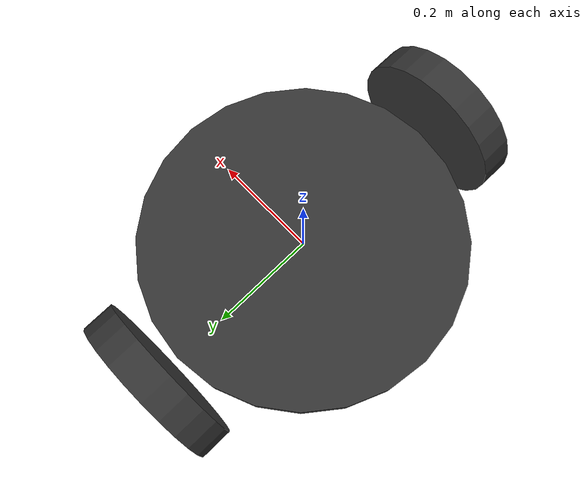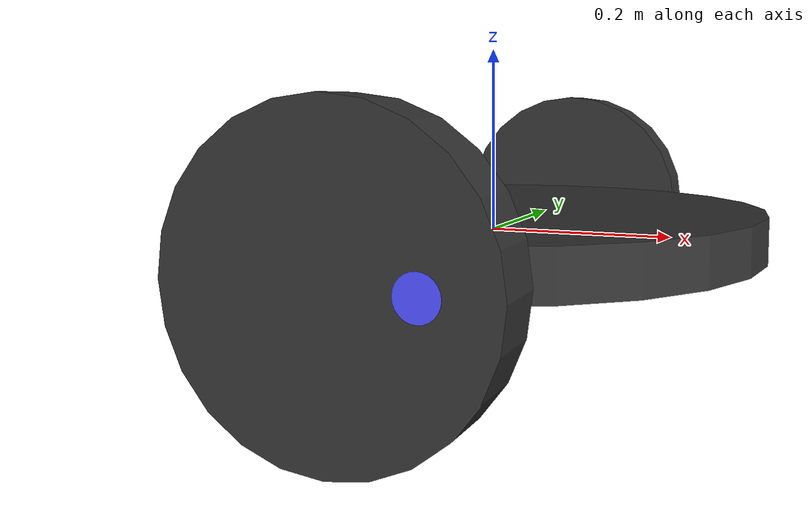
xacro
<?xml version="1.0"?>
<robot name="differential_base" xmlns:xacro="http://ros.org/wiki/xacro">
  <xacro:include filename="$(find arti_base_control_examples)/urdf/wheel.urdf.xacro"/>

  <!-- Main Links -->

  <link name="base_link"/>
  <link name="base_footprint"/>

  <joint name="base_link_to_base_footprint" type="fixed">
    <parent link="base_link"/>
    <child link="base_footprint"/>
    <origin xyz="0 0 -0.15"/>
  </joint>

  <!-- Body -->

  <link name="body">
    <visual>
      <geometry>
        <cylinder length="0.05" radius="0.3"/>
      </geometry>
      <material name="dark_gray">
        <color rgba="0.2 0.2 0.2 1.0"/>
      </material>
    </visual>
  </link>

  <joint name="body_joint" type="fixed">
    <parent link="base_link"/>
    <child link="body"/>
    <origin xyz="0.0 0.0 0.0"/>
  </joint>

  <!-- Wheels -->

  <xacro:wheel name="left_wheel"/>
  <xacro:wheel name="right_wheel"/>

  <joint name="left_wheel_joint" type="continuous">
    <parent link="base_link"/>
    <child link="left_wheel"/>
    <origin rpy="-1.57075 0 0" xyz="0.0 0.35 0.0"/>
    <axis xyz="0 0 1"/>
  </joint>

  <joint name="right_wheel_joint" type="continuous">
    <parent link="base_link"/>
    <child link="right_wheel"/>
    <origin rpy="1.57075 0 0" xyz="0.0 -0.35 0.0"/>
    <axis xyz="0 0 -1"/>
  </joint>
</robot>

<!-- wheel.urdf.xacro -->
<robot xmlns:xacro="http://ros.org/wiki/xacro">
  <xacro:macro name="wheel" params="name">
    <link name="${name}">
      <visual>
        <geometry>
          <cylinder length="0.06" radius="0.15"/>
	      </geometry>
        <material name="dark_gray">
          <color rgba="0.2 0.2 0.2 1.0"/>
        </material>
      </visual>
      <visual>
        <origin xyz="0.08 0 0.03"/>
        <geometry>
          <cylinder length="0.001" radius="0.02"/>
        </geometry>
        <material name="light_blue">
          <color rgba="0.3 0.3 1.0 1.0"/>
        </material>
      </visual>
    </link>
  </xacro:macro>
</robot>
